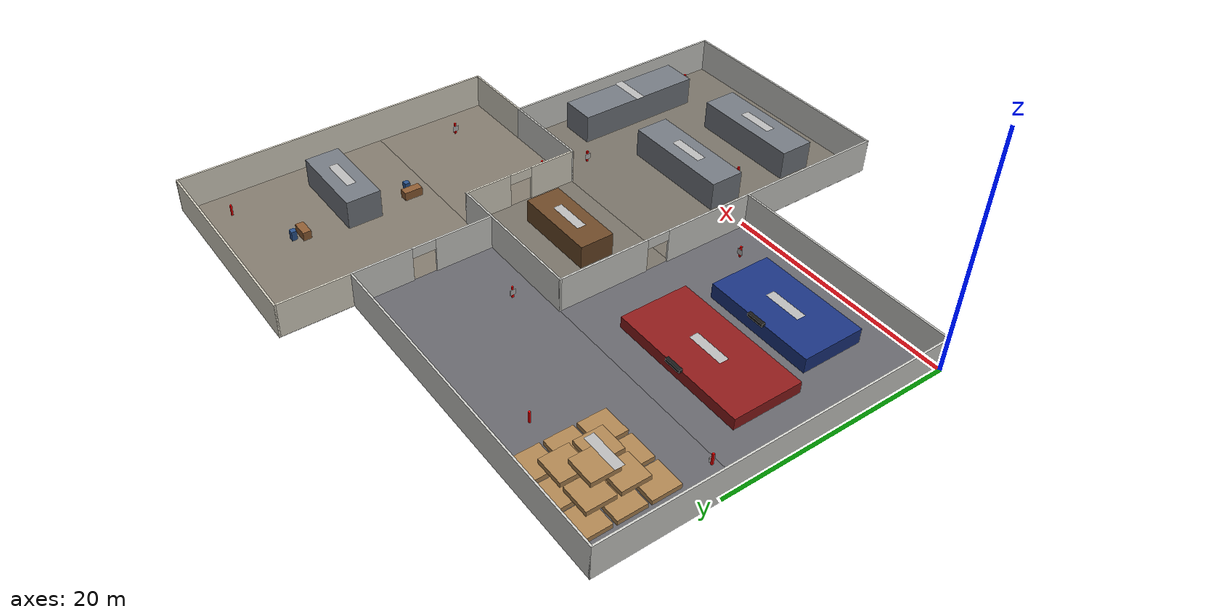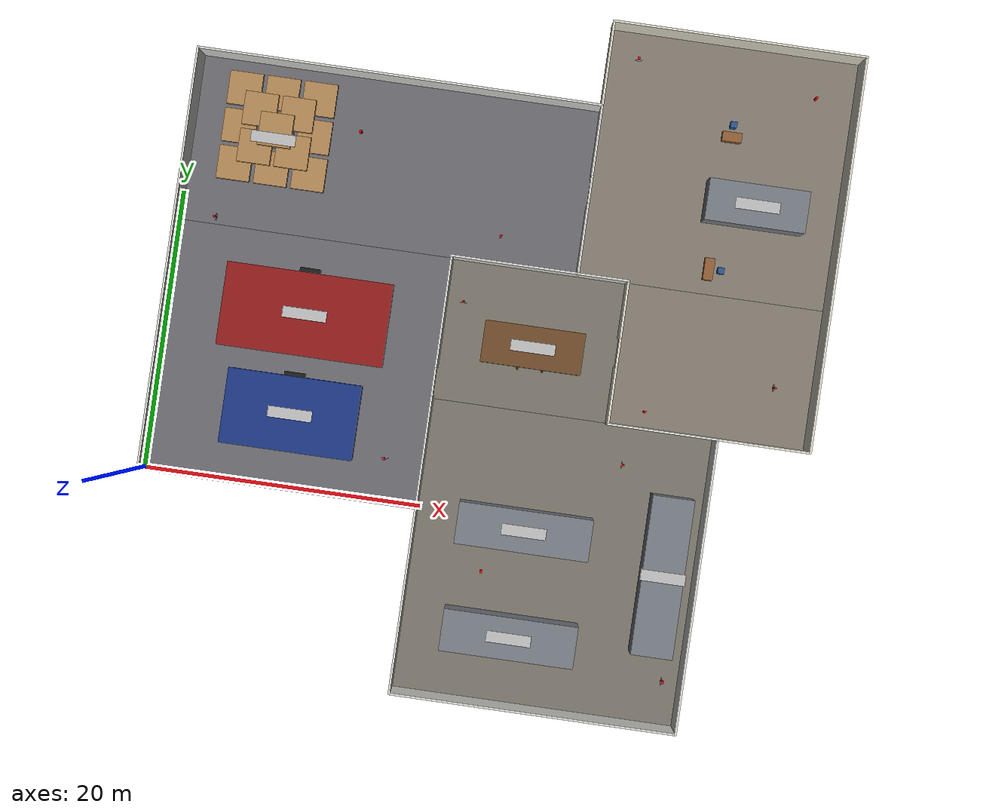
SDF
<sdf version="1.6">
 <world name="warehouse_world">
  <physics name="default_physics" default="true" type="ode">
   <max_step_size>0.001</max_step_size>
   <real_time_factor>1</real_time_factor>
   <real_time_update_rate>1000</real_time_update_rate>
   <ode>
    <solver><type>quick</type><iters>150</iters><sor>1.3</sor></solver>
    <constraints>
     <cfm>0.00001</cfm>
     <erp>0.2</erp>
     <contact_max_correcting_vel>100</contact_max_correcting_vel>
     <contact_surface_layer>0.001</contact_surface_layer>
    </constraints>
   </ode>
  </physics>
  <scene>
   <ambient>0.35 0.35 0.35 1</ambient>
   <background>0.55 0.62 0.7 1</background>
   <shadows>true</shadows>
   <grid>false</grid>
   <origin_visual>false</origin_visual>
  </scene>
  <light name="sun" type="directional">
   <pose>0 0 30 0 0 0</pose>
   <diffuse>0.85 0.85 0.82 1</diffuse>
   <specular>0.15 0.15 0.15 1</specular>
   <direction>-0.35 0.25 -0.9</direction>
  </light>
  <model name="wall_warehouse_west">
   <static>true</static>
   <pose>0.0000 15.0000 1.5000 0.0000 0.0000 0.0000</pose>
   <link name="link">
    <inertial>
     <mass>50.0</mass>
     <inertia><ixx>0.1</ixx><ixy>0</ixy><ixz>0</ixz><iyy>0.1</iyy><iyz>0</iyz><izz>0.1</izz></inertia>
    </inertial>
    <collision name="collision">
     <geometry><box><size>0.1500 30.1500 3.0000</size></box></geometry>
     <surface><friction><ode><mu>0.8</mu><mu2>0.8</mu2></ode></friction></surface>
    </collision>
    <visual name="visual">
     <geometry><box><size>0.1500 30.1500 3.0000</size></box></geometry>
     <material>
      <ambient>0.820 0.820 0.800 1.00</ambient>
      <diffuse>0.820 0.820 0.800 1.00</diffuse>
      <specular>0.15 0.15 0.15 1</specular>
      <emissive>0 0 0 1</emissive>
     </material>
    </visual>
   </link>
  </model>
  <model name="wall_warehouse_north">
   <static>true</static>
   <pose>14.4000 30.0000 1.5000 0.0000 0.0000 0.0000</pose>
   <link name="link">
    <inertial>
     <mass>50.0</mass>
     <inertia><ixx>0.1</ixx><ixy>0</ixy><ixz>0</ixz><iyy>0.1</iyy><iyz>0</iyz><izz>0.1</izz></inertia>
    </inertial>
    <collision name="collision">
     <geometry><box><size>28.9500 0.1500 3.0000</size></box></geometry>
     <surface><friction><ode><mu>0.8</mu><mu2>0.8</mu2></ode></friction></surface>
    </collision>
    <visual name="visual">
     <geometry><box><size>28.9500 0.1500 3.0000</size></box></geometry>
     <material>
      <ambient>0.820 0.820 0.800 1.00</ambient>
      <diffuse>0.820 0.820 0.800 1.00</diffuse>
      <specular>0.15 0.15 0.15 1</specular>
      <emissive>0 0 0 1</emissive>
     </material>
    </visual>
   </link>
  </model>
  <model name="wall_upper_storage_shared">
   <static>true</static>
   <pose>26.1000 18.0000 1.5000 0.0000 0.0000 0.0000</pose>
   <link name="link">
    <inertial>
     <mass>50.0</mass>
     <inertia><ixx>0.1</ixx><ixy>0</ixy><ixz>0</ixz><iyy>0.1</iyy><iyz>0</iyz><izz>0.1</izz></inertia>
    </inertial>
    <collision name="collision">
     <geometry><box><size>12.7500 0.1500 3.0000</size></box></geometry>
     <surface><friction><ode><mu>0.8</mu><mu2>0.8</mu2></ode></friction></surface>
    </collision>
    <visual name="visual">
     <geometry><box><size>12.7500 0.1500 3.0000</size></box></geometry>
     <material>
      <ambient>0.820 0.820 0.800 1.00</ambient>
      <diffuse>0.820 0.820 0.800 1.00</diffuse>
      <specular>0.15 0.15 0.15 1</specular>
      <emissive>0 0 0 1</emissive>
     </material>
    </visual>
   </link>
  </model>
  <model name="wall_storage_west_exterior">
   <static>true</static>
   <pose>19.8000 -6.6000 1.5000 0.0000 0.0000 0.0000</pose>
   <link name="link">
    <inertial>
     <mass>50.0</mass>
     <inertia><ixx>0.1</ixx><ixy>0</ixy><ixz>0</ixz><iyy>0.1</iyy><iyz>0</iyz><izz>0.1</izz></inertia>
    </inertial>
    <collision name="collision">
     <geometry><box><size>0.1500 13.3500 3.0000</size></box></geometry>
     <surface><friction><ode><mu>0.8</mu><mu2>0.8</mu2></ode></friction></surface>
    </collision>
    <visual name="visual">
     <geometry><box><size>0.1500 13.3500 3.0000</size></box></geometry>
     <material>
      <ambient>0.820 0.820 0.800 1.00</ambient>
      <diffuse>0.820 0.820 0.800 1.00</diffuse>
      <specular>0.15 0.15 0.15 1</specular>
      <emissive>0 0 0 1</emissive>
     </material>
    </visual>
   </link>
  </model>
  <model name="wall_warehouse_south">
   <static>true</static>
   <pose>9.9000 0.0000 1.5000 0.0000 0.0000 0.0000</pose>
   <link name="link">
    <inertial>
     <mass>50.0</mass>
     <inertia><ixx>0.1</ixx><ixy>0</ixy><ixz>0</ixz><iyy>0.1</iyy><iyz>0</iyz><izz>0.1</izz></inertia>
    </inertial>
    <collision name="collision">
     <geometry><box><size>19.9500 0.1500 3.0000</size></box></geometry>
     <surface><friction><ode><mu>0.8</mu><mu2>0.8</mu2></ode></friction></surface>
    </collision>
    <visual name="visual">
     <geometry><box><size>19.9500 0.1500 3.0000</size></box></geometry>
     <material>
      <ambient>0.820 0.820 0.800 1.00</ambient>
      <diffuse>0.820 0.820 0.800 1.00</diffuse>
      <specular>0.15 0.15 0.15 1</specular>
      <emissive>0 0 0 1</emissive>
     </material>
    </visual>
   </link>
  </model>
  <model name="wall_office_storage_shared_south">
   <static>true</static>
   <pose>36.3000 7.8000 1.5000 0.0000 0.0000 0.0000</pose>
   <link name="link">
    <inertial>
     <mass>50.0</mass>
     <inertia><ixx>0.1</ixx><ixy>0</ixy><ixz>0</ixz><iyy>0.1</iyy><iyz>0</iyz><izz>0.1</izz></inertia>
    </inertial>
    <collision name="collision">
     <geometry><box><size>7.9500 0.1500 3.0000</size></box></geometry>
     <surface><friction><ode><mu>0.8</mu><mu2>0.8</mu2></ode></friction></surface>
    </collision>
    <visual name="visual">
     <geometry><box><size>7.9500 0.1500 3.0000</size></box></geometry>
     <material>
      <ambient>0.820 0.820 0.800 1.00</ambient>
      <diffuse>0.820 0.820 0.800 1.00</diffuse>
      <specular>0.15 0.15 0.15 1</specular>
      <emissive>0 0 0 1</emissive>
     </material>
    </visual>
   </link>
  </model>
  <model name="wall_office_south_exterior">
   <static>true</static>
   <pose>43.5000 7.8000 1.5000 0.0000 0.0000 0.0000</pose>
   <link name="link">
    <inertial>
     <mass>50.0</mass>
     <inertia><ixx>0.1</ixx><ixy>0</ixy><ixz>0</ixz><iyy>0.1</iyy><iyz>0</iyz><izz>0.1</izz></inertia>
    </inertial>
    <collision name="collision">
     <geometry><box><size>6.7500 0.1500 3.0000</size></box></geometry>
     <surface><friction><ode><mu>0.8</mu><mu2>0.8</mu2></ode></friction></surface>
    </collision>
    <visual name="visual">
     <geometry><box><size>6.7500 0.1500 3.0000</size></box></geometry>
     <material>
      <ambient>0.860 0.840 0.780 1.00</ambient>
      <diffuse>0.860 0.840 0.780 1.00</diffuse>
      <specular>0.15 0.15 0.15 1</specular>
      <emissive>0 0 0 1</emissive>
     </material>
    </visual>
   </link>
  </model>
  <model name="wall_storage_east_exterior">
   <static>true</static>
   <pose>40.2000 -2.7000 1.5000 0.0000 0.0000 0.0000</pose>
   <link name="link">
    <inertial>
     <mass>50.0</mass>
     <inertia><ixx>0.1</ixx><ixy>0</ixy><ixz>0</ixz><iyy>0.1</iyy><iyz>0</iyz><izz>0.1</izz></inertia>
    </inertial>
    <collision name="collision">
     <geometry><box><size>0.1500 21.1500 3.0000</size></box></geometry>
     <surface><friction><ode><mu>0.8</mu><mu2>0.8</mu2></ode></friction></surface>
    </collision>
    <visual name="visual">
     <geometry><box><size>0.1500 21.1500 3.0000</size></box></geometry>
     <material>
      <ambient>0.820 0.820 0.800 1.00</ambient>
      <diffuse>0.820 0.820 0.800 1.00</diffuse>
      <specular>0.15 0.15 0.15 1</specular>
      <emissive>0 0 0 1</emissive>
     </material>
    </visual>
   </link>
  </model>
  <model name="wall_storage_south_exterior">
   <static>true</static>
   <pose>30.0000 -13.2000 1.5000 0.0000 0.0000 0.0000</pose>
   <link name="link">
    <inertial>
     <mass>50.0</mass>
     <inertia><ixx>0.1</ixx><ixy>0</ixy><ixz>0</ixz><iyy>0.1</iyy><iyz>0</iyz><izz>0.1</izz></inertia>
    </inertial>
    <collision name="collision">
     <geometry><box><size>20.5500 0.1500 3.0000</size></box></geometry>
     <surface><friction><ode><mu>0.8</mu><mu2>0.8</mu2></ode></friction></surface>
    </collision>
    <visual name="visual">
     <geometry><box><size>20.5500 0.1500 3.0000</size></box></geometry>
     <material>
      <ambient>0.820 0.820 0.800 1.00</ambient>
      <diffuse>0.820 0.820 0.800 1.00</diffuse>
      <specular>0.15 0.15 0.15 1</specular>
      <emissive>0 0 0 1</emissive>
     </material>
    </visual>
   </link>
  </model>
  <model name="wall_office_west_upper">
   <static>true</static>
   <pose>28.8000 33.0000 1.5000 0.0000 0.0000 0.0000</pose>
   <link name="link">
    <inertial>
     <mass>50.0</mass>
     <inertia><ixx>0.1</ixx><ixy>0</ixy><ixz>0</ixz><iyy>0.1</iyy><iyz>0</iyz><izz>0.1</izz></inertia>
    </inertial>
    <collision name="collision">
     <geometry><box><size>0.1500 6.1500 3.0000</size></box></geometry>
     <surface><friction><ode><mu>0.8</mu><mu2>0.8</mu2></ode></friction></surface>
    </collision>
    <visual name="visual">
     <geometry><box><size>0.1500 6.1500 3.0000</size></box></geometry>
     <material>
      <ambient>0.860 0.840 0.780 1.00</ambient>
      <diffuse>0.860 0.840 0.780 1.00</diffuse>
      <specular>0.15 0.15 0.15 1</specular>
      <emissive>0 0 0 1</emissive>
     </material>
    </visual>
   </link>
  </model>
  <model name="wall_office_north_exterior">
   <static>true</static>
   <pose>37.8000 36.0000 1.5000 0.0000 0.0000 0.0000</pose>
   <link name="link">
    <inertial>
     <mass>50.0</mass>
     <inertia><ixx>0.1</ixx><ixy>0</ixy><ixz>0</ixz><iyy>0.1</iyy><iyz>0</iyz><izz>0.1</izz></inertia>
    </inertial>
    <collision name="collision">
     <geometry><box><size>18.1500 0.1500 3.0000</size></box></geometry>
     <surface><friction><ode><mu>0.8</mu><mu2>0.8</mu2></ode></friction></surface>
    </collision>
    <visual name="visual">
     <geometry><box><size>18.1500 0.1500 3.0000</size></box></geometry>
     <material>
      <ambient>0.860 0.840 0.780 1.00</ambient>
      <diffuse>0.860 0.840 0.780 1.00</diffuse>
      <specular>0.15 0.15 0.15 1</specular>
      <emissive>0 0 0 1</emissive>
     </material>
    </visual>
   </link>
  </model>
  <model name="wall_office_east_exterior">
   <static>true</static>
   <pose>46.8000 21.9000 1.5000 0.0000 0.0000 0.0000</pose>
   <link name="link">
    <inertial>
     <mass>50.0</mass>
     <inertia><ixx>0.1</ixx><ixy>0</ixy><ixz>0</ixz><iyy>0.1</iyy><iyz>0</iyz><izz>0.1</izz></inertia>
    </inertial>
    <collision name="collision">
     <geometry><box><size>0.1500 28.3500 3.0000</size></box></geometry>
     <surface><friction><ode><mu>0.8</mu><mu2>0.8</mu2></ode></friction></surface>
    </collision>
    <visual name="visual">
     <geometry><box><size>0.1500 28.3500 3.0000</size></box></geometry>
     <material>
      <ambient>0.860 0.840 0.780 1.00</ambient>
      <diffuse>0.860 0.840 0.780 1.00</diffuse>
      <specular>0.15 0.15 0.15 1</specular>
      <emissive>0 0 0 1</emissive>
     </material>
    </visual>
   </link>
  </model>
  <model name="door_warehouse_office_jamb_a">
   <static>true</static>
   <pose>28.8000 20.4625 1.5000 0.0000 0.0000 0.0000</pose>
   <link name="link">
    <inertial>
     <mass>50.0</mass>
     <inertia><ixx>0.1</ixx><ixy>0</ixy><ixz>0</ixz><iyy>0.1</iyy><iyz>0</iyz><izz>0.1</izz></inertia>
    </inertial>
    <collision name="collision">
     <geometry><box><size>0.1500 5.0750 3.0000</size></box></geometry>
     <surface><friction><ode><mu>0.8</mu><mu2>0.8</mu2></ode></friction></surface>
    </collision>
    <visual name="visual">
     <geometry><box><size>0.1500 5.0750 3.0000</size></box></geometry>
     <material>
      <ambient>0.820 0.820 0.800 1.00</ambient>
      <diffuse>0.820 0.820 0.800 1.00</diffuse>
      <specular>0.15 0.15 0.15 1</specular>
      <emissive>0 0 0 1</emissive>
     </material>
    </visual>
   </link>
  </model>
  <model name="door_warehouse_office_jamb_b">
   <static>true</static>
   <pose>28.8000 27.5375 1.5000 0.0000 0.0000 0.0000</pose>
   <link name="link">
    <inertial>
     <mass>50.0</mass>
     <inertia><ixx>0.1</ixx><ixy>0</ixy><ixz>0</ixz><iyy>0.1</iyy><iyz>0</iyz><izz>0.1</izz></inertia>
    </inertial>
    <collision name="collision">
     <geometry><box><size>0.1500 5.0750 3.0000</size></box></geometry>
     <surface><friction><ode><mu>0.8</mu><mu2>0.8</mu2></ode></friction></surface>
    </collision>
    <visual name="visual">
     <geometry><box><size>0.1500 5.0750 3.0000</size></box></geometry>
     <material>
      <ambient>0.820 0.820 0.800 1.00</ambient>
      <diffuse>0.820 0.820 0.800 1.00</diffuse>
      <specular>0.15 0.15 0.15 1</specular>
      <emissive>0 0 0 1</emissive>
     </material>
    </visual>
   </link>
  </model>
  <model name="door_warehouse_office_header">
   <static>true</static>
   <pose>28.8000 24.0000 2.5500 0.0000 0.0000 0.0000</pose>
   <link name="link">
    <inertial>
     <mass>10.0</mass>
     <inertia><ixx>0.1</ixx><ixy>0</ixy><ixz>0</ixz><iyy>0.1</iyy><iyz>0</iyz><izz>0.1</izz></inertia>
    </inertial>
    <collision name="collision">
     <geometry><box><size>0.1500 2.0000 0.9000</size></box></geometry>
     <surface><friction><ode><mu>0.8</mu><mu2>0.8</mu2></ode></friction></surface>
    </collision>
    <visual name="visual">
     <geometry><box><size>0.1500 2.0000 0.9000</size></box></geometry>
     <material>
      <ambient>0.820 0.820 0.800 1.00</ambient>
      <diffuse>0.820 0.820 0.800 1.00</diffuse>
      <specular>0.15 0.15 0.15 1</specular>
      <emissive>0 0 0 1</emissive>
     </material>
    </visual>
   </link>
  </model>
  <model name="door_warehouse_storage_jamb_a">
   <static>true</static>
   <pose>19.8000 3.9625 1.5000 0.0000 0.0000 0.0000</pose>
   <link name="link">
    <inertial>
     <mass>50.0</mass>
     <inertia><ixx>0.1</ixx><ixy>0</ixy><ixz>0</ixz><iyy>0.1</iyy><iyz>0</iyz><izz>0.1</izz></inertia>
    </inertial>
    <collision name="collision">
     <geometry><box><size>0.1500 8.0750 3.0000</size></box></geometry>
     <surface><friction><ode><mu>0.8</mu><mu2>0.8</mu2></ode></friction></surface>
    </collision>
    <visual name="visual">
     <geometry><box><size>0.1500 8.0750 3.0000</size></box></geometry>
     <material>
      <ambient>0.820 0.820 0.800 1.00</ambient>
      <diffuse>0.820 0.820 0.800 1.00</diffuse>
      <specular>0.15 0.15 0.15 1</specular>
      <emissive>0 0 0 1</emissive>
     </material>
    </visual>
   </link>
  </model>
  <model name="door_warehouse_storage_jamb_b">
   <static>true</static>
   <pose>19.8000 14.0375 1.5000 0.0000 0.0000 0.0000</pose>
   <link name="link">
    <inertial>
     <mass>50.0</mass>
     <inertia><ixx>0.1</ixx><ixy>0</ixy><ixz>0</ixz><iyy>0.1</iyy><iyz>0</iyz><izz>0.1</izz></inertia>
    </inertial>
    <collision name="collision">
     <geometry><box><size>0.1500 8.0750 3.0000</size></box></geometry>
     <surface><friction><ode><mu>0.8</mu><mu2>0.8</mu2></ode></friction></surface>
    </collision>
    <visual name="visual">
     <geometry><box><size>0.1500 8.0750 3.0000</size></box></geometry>
     <material>
      <ambient>0.820 0.820 0.800 1.00</ambient>
      <diffuse>0.820 0.820 0.800 1.00</diffuse>
      <specular>0.15 0.15 0.15 1</specular>
      <emissive>0 0 0 1</emissive>
     </material>
    </visual>
   </link>
  </model>
  <model name="door_warehouse_storage_header">
   <static>true</static>
   <pose>19.8000 9.0000 2.5500 0.0000 0.0000 0.0000</pose>
   <link name="link">
    <inertial>
     <mass>10.0</mass>
     <inertia><ixx>0.1</ixx><ixy>0</ixy><ixz>0</ixz><iyy>0.1</iyy><iyz>0</iyz><izz>0.1</izz></inertia>
    </inertial>
    <collision name="collision">
     <geometry><box><size>0.1500 2.0000 0.9000</size></box></geometry>
     <surface><friction><ode><mu>0.8</mu><mu2>0.8</mu2></ode></friction></surface>
    </collision>
    <visual name="visual">
     <geometry><box><size>0.1500 2.0000 0.9000</size></box></geometry>
     <material>
      <ambient>0.820 0.820 0.800 1.00</ambient>
      <diffuse>0.820 0.820 0.800 1.00</diffuse>
      <specular>0.15 0.15 0.15 1</specular>
      <emissive>0 0 0 1</emissive>
     </material>
    </visual>
   </link>
  </model>
  <model name="door_office_storage_jamb_a">
   <static>true</static>
   <pose>32.4000 9.8125 1.5000 0.0000 0.0000 0.0000</pose>
   <link name="link">
    <inertial>
     <mass>50.0</mass>
     <inertia><ixx>0.1</ixx><ixy>0</ixy><ixz>0</ixz><iyy>0.1</iyy><iyz>0</iyz><izz>0.1</izz></inertia>
    </inertial>
    <collision name="collision">
     <geometry><box><size>0.1500 4.1750 3.0000</size></box></geometry>
     <surface><friction><ode><mu>0.8</mu><mu2>0.8</mu2></ode></friction></surface>
    </collision>
    <visual name="visual">
     <geometry><box><size>0.1500 4.1750 3.0000</size></box></geometry>
     <material>
      <ambient>0.860 0.840 0.780 1.00</ambient>
      <diffuse>0.860 0.840 0.780 1.00</diffuse>
      <specular>0.15 0.15 0.15 1</specular>
      <emissive>0 0 0 1</emissive>
     </material>
    </visual>
   </link>
  </model>
  <model name="door_office_storage_jamb_b">
   <static>true</static>
   <pose>32.4000 15.9875 1.5000 0.0000 0.0000 0.0000</pose>
   <link name="link">
    <inertial>
     <mass>50.0</mass>
     <inertia><ixx>0.1</ixx><ixy>0</ixy><ixz>0</ixz><iyy>0.1</iyy><iyz>0</iyz><izz>0.1</izz></inertia>
    </inertial>
    <collision name="collision">
     <geometry><box><size>0.1500 4.1750 3.0000</size></box></geometry>
     <surface><friction><ode><mu>0.8</mu><mu2>0.8</mu2></ode></friction></surface>
    </collision>
    <visual name="visual">
     <geometry><box><size>0.1500 4.1750 3.0000</size></box></geometry>
     <material>
      <ambient>0.860 0.840 0.780 1.00</ambient>
      <diffuse>0.860 0.840 0.780 1.00</diffuse>
      <specular>0.15 0.15 0.15 1</specular>
      <emissive>0 0 0 1</emissive>
     </material>
    </visual>
   </link>
  </model>
  <model name="door_office_storage_header">
   <static>true</static>
   <pose>32.4000 12.9000 2.5500 0.0000 0.0000 0.0000</pose>
   <link name="link">
    <inertial>
     <mass>10.0</mass>
     <inertia><ixx>0.1</ixx><ixy>0</ixy><ixz>0</ixz><iyy>0.1</iyy><iyz>0</iyz><izz>0.1</izz></inertia>
    </inertial>
    <collision name="collision">
     <geometry><box><size>0.1500 2.0000 0.9000</size></box></geometry>
     <surface><friction><ode><mu>0.8</mu><mu2>0.8</mu2></ode></friction></surface>
    </collision>
    <visual name="visual">
     <geometry><box><size>0.1500 2.0000 0.9000</size></box></geometry>
     <material>
      <ambient>0.860 0.840 0.780 1.00</ambient>
      <diffuse>0.860 0.840 0.780 1.00</diffuse>
      <specular>0.15 0.15 0.15 1</specular>
      <emissive>0 0 0 1</emissive>
     </material>
    </visual>
   </link>
  </model>
  <model name="floor_warehouse_upper">
   <static>true</static>
   <pose>14.4000 24.0000 -0.0500 0.0000 0.0000 0.0000</pose>
   <link name="link">
    <inertial>
     <mass>100.0</mass>
     <inertia><ixx>0.1</ixx><ixy>0</ixy><ixz>0</ixz><iyy>0.1</iyy><iyz>0</iyz><izz>0.1</izz></inertia>
    </inertial>
    <collision name="collision">
     <geometry><box><size>28.8000 12.0000 0.1000</size></box></geometry>
     <surface><friction><ode><mu>0.8</mu><mu2>0.8</mu2></ode></friction></surface>
    </collision>
    <visual name="visual">
     <geometry><box><size>28.8000 12.0000 0.1000</size></box></geometry>
     <material>
      <ambient>0.400 0.400 0.420 1.00</ambient>
      <diffuse>0.400 0.400 0.420 1.00</diffuse>
      <specular>0.15 0.15 0.15 1</specular>
      <emissive>0 0 0 1</emissive>
     </material>
    </visual>
   </link>
  </model>
  <model name="floor_warehouse_lower">
   <static>true</static>
   <pose>9.9000 9.0000 -0.0500 0.0000 0.0000 0.0000</pose>
   <link name="link">
    <inertial>
     <mass>100.0</mass>
     <inertia><ixx>0.1</ixx><ixy>0</ixy><ixz>0</ixz><iyy>0.1</iyy><iyz>0</iyz><izz>0.1</izz></inertia>
    </inertial>
    <collision name="collision">
     <geometry><box><size>19.8000 18.0000 0.1000</size></box></geometry>
     <surface><friction><ode><mu>0.8</mu><mu2>0.8</mu2></ode></friction></surface>
    </collision>
    <visual name="visual">
     <geometry><box><size>19.8000 18.0000 0.1000</size></box></geometry>
     <material>
      <ambient>0.400 0.400 0.420 1.00</ambient>
      <diffuse>0.400 0.400 0.420 1.00</diffuse>
      <specular>0.15 0.15 0.15 1</specular>
      <emissive>0 0 0 1</emissive>
     </material>
    </visual>
   </link>
  </model>
  <model name="floor_storage_upper">
   <static>true</static>
   <pose>26.1000 12.9000 -0.0500 0.0000 0.0000 0.0000</pose>
   <link name="link">
    <inertial>
     <mass>100.0</mass>
     <inertia><ixx>0.1</ixx><ixy>0</ixy><ixz>0</ixz><iyy>0.1</iyy><iyz>0</iyz><izz>0.1</izz></inertia>
    </inertial>
    <collision name="collision">
     <geometry><box><size>12.6000 10.2000 0.1000</size></box></geometry>
     <surface><friction><ode><mu>0.8</mu><mu2>0.8</mu2></ode></friction></surface>
    </collision>
    <visual name="visual">
     <geometry><box><size>12.6000 10.2000 0.1000</size></box></geometry>
     <material>
      <ambient>0.460 0.440 0.400 1.00</ambient>
      <diffuse>0.460 0.440 0.400 1.00</diffuse>
      <specular>0.15 0.15 0.15 1</specular>
      <emissive>0 0 0 1</emissive>
     </material>
    </visual>
   </link>
  </model>
  <model name="floor_storage_lower">
   <static>true</static>
   <pose>30.0000 -2.7000 -0.0500 0.0000 0.0000 0.0000</pose>
   <link name="link">
    <inertial>
     <mass>100.0</mass>
     <inertia><ixx>0.1</ixx><ixy>0</ixy><ixz>0</ixz><iyy>0.1</iyy><iyz>0</iyz><izz>0.1</izz></inertia>
    </inertial>
    <collision name="collision">
     <geometry><box><size>20.4000 21.0000 0.1000</size></box></geometry>
     <surface><friction><ode><mu>0.8</mu><mu2>0.8</mu2></ode></friction></surface>
    </collision>
    <visual name="visual">
     <geometry><box><size>20.4000 21.0000 0.1000</size></box></geometry>
     <material>
      <ambient>0.460 0.440 0.400 1.00</ambient>
      <diffuse>0.460 0.440 0.400 1.00</diffuse>
      <specular>0.15 0.15 0.15 1</specular>
      <emissive>0 0 0 1</emissive>
     </material>
    </visual>
   </link>
  </model>
  <model name="floor_office_upper">
   <static>true</static>
   <pose>37.8000 27.0000 -0.0500 0.0000 0.0000 0.0000</pose>
   <link name="link">
    <inertial>
     <mass>100.0</mass>
     <inertia><ixx>0.1</ixx><ixy>0</ixy><ixz>0</ixz><iyy>0.1</iyy><iyz>0</iyz><izz>0.1</izz></inertia>
    </inertial>
    <collision name="collision">
     <geometry><box><size>18.0000 18.0000 0.1000</size></box></geometry>
     <surface><friction><ode><mu>0.8</mu><mu2>0.8</mu2></ode></friction></surface>
    </collision>
    <visual name="visual">
     <geometry><box><size>18.0000 18.0000 0.1000</size></box></geometry>
     <material>
      <ambient>0.500 0.470 0.420 1.00</ambient>
      <diffuse>0.500 0.470 0.420 1.00</diffuse>
      <specular>0.15 0.15 0.15 1</specular>
      <emissive>0 0 0 1</emissive>
     </material>
    </visual>
   </link>
  </model>
  <model name="floor_office_lower">
   <static>true</static>
   <pose>39.6000 12.9000 -0.0500 0.0000 0.0000 0.0000</pose>
   <link name="link">
    <inertial>
     <mass>100.0</mass>
     <inertia><ixx>0.1</ixx><ixy>0</ixy><ixz>0</ixz><iyy>0.1</iyy><iyz>0</iyz><izz>0.1</izz></inertia>
    </inertial>
    <collision name="collision">
     <geometry><box><size>14.4000 10.2000 0.1000</size></box></geometry>
     <surface><friction><ode><mu>0.8</mu><mu2>0.8</mu2></ode></friction></surface>
    </collision>
    <visual name="visual">
     <geometry><box><size>14.4000 10.2000 0.1000</size></box></geometry>
     <material>
      <ambient>0.500 0.470 0.420 1.00</ambient>
      <diffuse>0.500 0.470 0.420 1.00</diffuse>
      <specular>0.15 0.15 0.15 1</specular>
      <emissive>0 0 0 1</emissive>
     </material>
    </visual>
   </link>
  </model>
  <model name="loading_area_pad">
   <static>true</static>
   <pose>6.0000 25.2000 0.0010 0.0000 0.0000 0.0000</pose>
   <link name="link">
    <inertial>
     <mass>5.0</mass>
     <inertia><ixx>0.1</ixx><ixy>0</ixy><ixz>0</ixz><iyy>0.1</iyy><iyz>0</iyz><izz>0.1</izz></inertia>
    </inertial>
    <collision name="collision">
     <geometry><plane><normal>0 0 1</normal><size>9.6000 9.6000</size></plane></geometry>
     <surface><friction><ode><mu>0.8</mu><mu2>0.8</mu2></ode></friction></surface>
    </collision>
    <visual name="visual">
     <geometry><plane><normal>0 0 1</normal><size>9.6000 9.6000</size></plane></geometry>
     <material>
      <ambient>0.850 0.700 0.100 1.00</ambient>
      <diffuse>0.850 0.700 0.100 1.00</diffuse>
      <specular>0.15 0.15 0.15 1</specular>
      <emissive>0 0 0 1</emissive>
     </material>
    </visual>
   </link>
  </model>
  <model name="machine_1">
   <static>true</static>
   <pose>9.9000 12.4500 0.5000 0.0000 0.0000 0.0000</pose>
   <link name="link">
    <inertial>
     <mass>250.0</mass>
     <inertia><ixx>0.1</ixx><ixy>0</ixy><ixz>0</ixz><iyy>0.1</iyy><iyz>0</iyz><izz>0.1</izz></inertia>
    </inertial>
    <collision name="collision">
     <geometry><box><size>12.0000 6.0000 1.0000</size></box></geometry>
     <surface><friction><ode><mu>0.8</mu><mu2>0.8</mu2></ode></friction></surface>
    </collision>
    <visual name="visual">
     <geometry><box><size>12.0000 6.0000 1.0000</size></box></geometry>
     <material>
      <ambient>0.550 0.100 0.100 1.00</ambient>
      <diffuse>0.550 0.100 0.100 1.00</diffuse>
      <specular>0.15 0.15 0.15 1</specular>
      <emissive>0 0 0 1</emissive>
     </material>
    </visual>
   </link>
  </model>
  <model name="machine_1_panel">
   <static>true</static>
   <pose>9.9000 15.6000 1.1500 0.0000 0.0000 0.0000</pose>
   <link name="link">
    <inertial>
     <mass>2.0</mass>
     <inertia><ixx>0.1</ixx><ixy>0</ixy><ixz>0</ixz><iyy>0.1</iyy><iyz>0</iyz><izz>0.1</izz></inertia>
    </inertial>
    <collision name="collision">
     <geometry><box><size>1.5000 0.3000 0.3000</size></box></geometry>
     <surface><friction><ode><mu>0.8</mu><mu2>0.8</mu2></ode></friction></surface>
    </collision>
    <visual name="visual">
     <geometry><box><size>1.5000 0.3000 0.3000</size></box></geometry>
     <material>
      <ambient>0.100 0.100 0.100 1.00</ambient>
      <diffuse>0.100 0.100 0.100 1.00</diffuse>
      <specular>0.15 0.15 0.15 1</specular>
      <emissive>0 0 0 1</emissive>
     </material>
    </visual>
   </link>
  </model>
  <model name="machine_2">
   <static>true</static>
   <pose>9.9000 5.2500 0.6500 0.0000 0.0000 0.0000</pose>
   <link name="link">
    <inertial>
     <mass>300.0</mass>
     <inertia><ixx>0.1</ixx><ixy>0</ixy><ixz>0</ixz><iyy>0.1</iyy><iyz>0</iyz><izz>0.1</izz></inertia>
    </inertial>
    <collision name="collision">
     <geometry><box><size>9.6000 5.4000 1.3000</size></box></geometry>
     <surface><friction><ode><mu>0.8</mu><mu2>0.8</mu2></ode></friction></surface>
    </collision>
    <visual name="visual">
     <geometry><box><size>9.6000 5.4000 1.3000</size></box></geometry>
     <material>
      <ambient>0.100 0.200 0.500 1.00</ambient>
      <diffuse>0.100 0.200 0.500 1.00</diffuse>
      <specular>0.15 0.15 0.15 1</specular>
      <emissive>0 0 0 1</emissive>
     </material>
    </visual>
   </link>
  </model>
  <model name="machine_2_panel">
   <static>true</static>
   <pose>9.9000 8.1000 1.4500 0.0000 0.0000 0.0000</pose>
   <link name="link">
    <inertial>
     <mass>2.0</mass>
     <inertia><ixx>0.1</ixx><ixy>0</ixy><ixz>0</ixz><iyy>0.1</iyy><iyz>0</iyz><izz>0.1</izz></inertia>
    </inertial>
    <collision name="collision">
     <geometry><box><size>1.5000 0.3000 0.3000</size></box></geometry>
     <surface><friction><ode><mu>0.8</mu><mu2>0.8</mu2></ode></friction></surface>
    </collision>
    <visual name="visual">
     <geometry><box><size>1.5000 0.3000 0.3000</size></box></geometry>
     <material>
      <ambient>0.100 0.100 0.100 1.00</ambient>
      <diffuse>0.100 0.100 0.100 1.00</diffuse>
      <specular>0.15 0.15 0.15 1</specular>
      <emissive>0 0 0 1</emissive>
     </material>
    </visual>
   </link>
  </model>
  <model name="cupboard">
   <static>true</static>
   <pose>26.4000 12.4000 1.0000 0.0000 0.0000 0.0000</pose>
   <link name="link">
    <inertial>
     <mass>60.0</mass>
     <inertia><ixx>0.1</ixx><ixy>0</ixy><ixz>0</ixz><iyy>0.1</iyy><iyz>0</iyz><izz>0.1</izz></inertia>
    </inertial>
    <collision name="collision">
     <geometry><box><size>7.2000 3.0000 2.0000</size></box></geometry>
     <surface><friction><ode><mu>0.8</mu><mu2>0.8</mu2></ode></friction></surface>
    </collision>
    <visual name="visual">
     <geometry><box><size>7.2000 3.0000 2.0000</size></box></geometry>
     <material>
      <ambient>0.420 0.280 0.150 1.00</ambient>
      <diffuse>0.420 0.280 0.150 1.00</diffuse>
      <specular>0.15 0.15 0.15 1</specular>
      <emissive>0 0 0 1</emissive>
     </material>
    </visual>
   </link>
  </model>
  <model name="cupboard_handle_1">
   <static>true</static>
   <pose>25.5000 10.8100 1.0000 0.0000 0.0000 0.0000</pose>
   <link name="link">
    <inertial>
     <mass>0.2</mass>
     <inertia><ixx>0.1</ixx><ixy>0</ixy><ixz>0</ixz><iyy>0.1</iyy><iyz>0</iyz><izz>0.1</izz></inertia>
    </inertial>
    <collision name="collision">
     <geometry><box><size>0.1800 0.1800 0.1500</size></box></geometry>
     <surface><friction><ode><mu>0.8</mu><mu2>0.8</mu2></ode></friction></surface>
    </collision>
    <visual name="visual">
     <geometry><box><size>0.1800 0.1800 0.1500</size></box></geometry>
     <material>
      <ambient>0.200 0.130 0.070 1.00</ambient>
      <diffuse>0.200 0.130 0.070 1.00</diffuse>
      <specular>0.15 0.15 0.15 1</specular>
      <emissive>0 0 0 1</emissive>
     </material>
    </visual>
   </link>
  </model>
  <model name="cupboard_handle_2">
   <static>true</static>
   <pose>27.3000 10.8100 1.0000 0.0000 0.0000 0.0000</pose>
   <link name="link">
    <inertial>
     <mass>0.2</mass>
     <inertia><ixx>0.1</ixx><ixy>0</ixy><ixz>0</ixz><iyy>0.1</iyy><iyz>0</iyz><izz>0.1</izz></inertia>
    </inertial>
    <collision name="collision">
     <geometry><box><size>0.1800 0.1800 0.1500</size></box></geometry>
     <surface><friction><ode><mu>0.8</mu><mu2>0.8</mu2></ode></friction></surface>
    </collision>
    <visual name="visual">
     <geometry><box><size>0.1800 0.1800 0.1500</size></box></geometry>
     <material>
      <ambient>0.200 0.130 0.070 1.00</ambient>
      <diffuse>0.200 0.130 0.070 1.00</diffuse>
      <specular>0.15 0.15 0.15 1</specular>
      <emissive>0 0 0 1</emissive>
     </material>
    </visual>
   </link>
  </model>
  <model name="marker_stand_1">
   <static>true</static>
   <pose>2.5000 18.5000 0.5000 0.0000 0.0000 0.0000</pose>
   <link name="link">
    <collision name="collision"><geometry><box><size>0.15 0.15 1</size></box></geometry></collision>
    <visual name="visual">
     <geometry><box><size>0.15 0.15 1</size></box></geometry>
     <material><ambient>1 0 0 1</ambient><diffuse>1 0 0 1</diffuse></material>
    </visual>
   </link>
  </model>
  <model name="marker_stand_2">
   <static>true</static>
   <pose>17 3 0.5 0 0 0</pose>
   <link name="link">
    <collision name="collision"><geometry><box><size>0.15 0.15 1</size></box></geometry></collision>
    <visual name="visual">
     <geometry><box><size>0.15 0.15 1</size></box></geometry>
     <material><ambient>1 0 0 1</ambient><diffuse>1 0 0 1</diffuse></material>
    </visual>
   </link>
  </model>
  <model name="marker_stand_3">
   <static>true</static>
   <pose>23 20 0.5 0 0 0</pose>
   <link name="link">
    <collision name="collision"><geometry><box><size>0.15 0.15 1</size></box></geometry></collision>
    <visual name="visual">
     <geometry><box><size>0.15 0.15 1</size></box></geometry>
     <material><ambient>1 0 0 1</ambient><diffuse>1 0 0 1</diffuse></material>
    </visual>
   </link>
  </model>
  <model name="marker_stand_4">
   <static>true</static>
   <pose>21 15 0.5 0 0 0</pose>
   <link name="link">
    <collision name="collision"><geometry><box><size>0.15 0.15 1</size></box></geometry></collision>
    <visual name="visual">
     <geometry><box><size>0.15 0.15 1</size></box></geometry>
     <material><ambient>1 0 0 1</ambient><diffuse>1 0 0 1</diffuse></material>
    </visual>
   </link>
  </model>
  <model name="marker_stand_5">
   <static>true</static>
   <pose>34 5 0.5 0 0 0</pose>
   <link name="link">
    <collision name="collision"><geometry><box><size>0.15 0.15 1</size></box></geometry></collision>
    <visual name="visual">
     <geometry><box><size>0.15 0.15 1</size></box></geometry>
     <material><ambient>1 0 0 1</ambient><diffuse>1 0 0 1</diffuse></material>
    </visual>
   </link>
  </model>
  <model name="marker_stand_6">
   <static>true</static>
   <pose>39 -10 0.5 0 0 0</pose>
   <link name="link">
    <collision name="collision"><geometry><box><size>0.15 0.15 1</size></box></geometry></collision>
    <visual name="visual">
     <geometry><box><size>0.15 0.15 1</size></box></geometry>
     <material><ambient>1 0 0 1</ambient><diffuse>1 0 0 1</diffuse></material>
    </visual>
   </link>
  </model>
  <model name="marker_stand_7">
   <static>true</static>
   <pose>44 33 0.5 0 0 0</pose>
   <link name="link">
    <collision name="collision"><geometry><box><size>0.15 0.15 1</size></box></geometry></collision>
    <visual name="visual">
     <geometry><box><size>0.15 0.15 1</size></box></geometry>
     <material><ambient>1 0 0 1</ambient><diffuse>1 0 0 1</diffuse></material>
    </visual>
   </link>
  </model>
  <model name="marker_stand_8">
   <static>true</static>
   <pose>35 9 0.5 0 0 0</pose>
   <link name="link">
    <collision name="collision"><geometry><box><size>0.15 0.15 1</size></box></geometry></collision>
    <visual name="visual">
     <geometry><box><size>0.15 0.15 1</size></box></geometry>
     <material><ambient>1 0 0 1</ambient><diffuse>1 0 0 1</diffuse></material>
    </visual>
   </link>
  </model>
  <model name="marker_stand_9">
   <static>true</static>
   <pose>12 26 0.5 0 0 0</pose>
   <link name="link">
    <collision name="collision"><geometry><box><size>0.15 0.15 1</size></box></geometry></collision>
    <visual name="visual">
     <geometry><box><size>0.15 0.15 1</size></box></geometry>
     <material><ambient>1 0 0 1</ambient><diffuse>1 0 0 1</diffuse></material>
    </visual>
   </link>
  </model>
  <model name="marker_stand_10">
   <static>true</static>
   <pose>25 -4 0.5 0 0 0</pose>
   <link name="link">
    <collision name="collision"><geometry><box><size>0.15 0.15 1</size></box></geometry></collision>
    <visual name="visual">
     <geometry><box><size>0.15 0.15 1</size></box></geometry>
     <material><ambient>1 0 0 1</ambient><diffuse>1 0 0 1</diffuse></material>
    </visual>
   </link>
  </model>
  <model name="marker_stand_11">
   <static>true</static>
   <pose>31 34 0.5 0 0 0</pose>
   <link name="link">
    <collision name="collision"><geometry><box><size>0.15 0.15 1</size></box></geometry></collision>
    <visual name="visual">
     <geometry><box><size>0.15 0.15 1</size></box></geometry>
     <material><ambient>1 0 0 1</ambient><diffuse>1 0 0 1</diffuse></material>
    </visual>
   </link>
  </model>
  <model name="marker_stand_12">
   <static>true</static>
   <pose>44 12 0.5 0 0 0</pose>
   <link name="link">
    <collision name="collision"><geometry><box><size>0.15 0.15 1</size></box></geometry></collision>
    <visual name="visual">
     <geometry><box><size>0.15 0.15 1</size></box></geometry>
     <material><ambient>1 0 0 1</ambient><diffuse>1 0 0 1</diffuse></material>
    </visual>
   </link>
  </model>
  <include>
   <uri>model://aruco_marker_0</uri>
   <name>aruco_0</name>
   <pose>2.575 18.5 0.5 0 0 -1.5708</pose>
  </include>
  <include><uri>model://aruco_marker_1</uri><name>aruco_1</name><pose>17 3.075 0.5 0 0 0</pose></include>
  <include><uri>model://aruco_marker_2</uri><name>aruco_2</name><pose>22.925 20 0.5 0 0 1.5708</pose></include>
  <include><uri>model://aruco_marker_3</uri><name>aruco_3</name><pose>21 14.925 0.5 0 0 0</pose></include>
  <include><uri>model://aruco_marker_4</uri><name>aruco_4</name><pose>33.925 5 0.5 0 0 1.5708</pose></include>
  <include><uri>model://aruco_marker_5</uri><name>aruco_5</name><pose>38.925 -10 0.5 0 0 1.5708</pose></include>
  <include><uri>model://aruco_marker_10</uri><name>aruco_10</name><pose>31 33.925 0.5 0 0 0</pose></include>
  <include>
   <uri>model://aruco_marker_11</uri>
   <name>aruco_11</name>
   <pose>43.925 12 0.5 0 0 1.5708</pose>
  </include>
  <model name="table_3">
   <static>true</static>
   <pose>38.4000 29.4000 0.3750 0.0000 0.0000 0.0000</pose>
   <link name="link">
    <inertial>
     <mass>20.0</mass>
     <inertia><ixx>0.1</ixx><ixy>0</ixy><ixz>0</ixz><iyy>0.1</iyy><iyz>0</iyz><izz>0.1</izz></inertia>
    </inertial>
    <collision name="collision">
     <geometry><box><size>1.4000 0.7000 0.7500</size></box></geometry>
     <surface><friction><ode><mu>0.8</mu><mu2>0.8</mu2></ode></friction></surface>
    </collision>
    <visual name="visual">
     <geometry><box><size>1.4000 0.7000 0.7500</size></box></geometry>
     <material>
      <ambient>0.550 0.360 0.200 1.00</ambient>
      <diffuse>0.550 0.360 0.200 1.00</diffuse>
      <specular>0.15 0.15 0.15 1</specular>
      <emissive>0 0 0 1</emissive>
     </material>
    </visual>
   </link>
  </model>
  <model name="chair_3">
   <static>true</static>
   <pose>38.4000 30.2750 0.4250 0.0000 0.0000 0.0000</pose>
   <link name="link">
    <inertial>
     <mass>20.0</mass>
     <inertia><ixx>0.1</ixx><ixy>0</ixy><ixz>0</ixz><iyy>0.1</iyy><iyz>0</iyz><izz>0.1</izz></inertia>
    </inertial>
    <collision name="collision">
     <geometry><box><size>0.4500 0.4500 0.8500</size></box></geometry>
     <surface><friction><ode><mu>0.8</mu><mu2>0.8</mu2></ode></friction></surface>
    </collision>
    <visual name="visual">
     <geometry><box><size>0.4500 0.4500 0.8500</size></box></geometry>
     <material>
      <ambient>0.160 0.320 0.550 1.00</ambient>
      <diffuse>0.160 0.320 0.550 1.00</diffuse>
      <specular>0.15 0.15 0.15 1</specular>
      <emissive>0 0 0 1</emissive>
     </material>
    </visual>
   </link>
  </model>
  <model name="table_4">
   <static>true</static>
   <pose>38.1000 19.8000 0.3750 0.0000 0.0000 0.0000</pose>
   <link name="link">
    <inertial>
     <mass>20.0</mass>
     <inertia><ixx>0.1</ixx><ixy>0</ixy><ixz>0</ixz><iyy>0.1</iyy><iyz>0</iyz><izz>0.1</izz></inertia>
    </inertial>
    <collision name="collision">
     <geometry><box><size>0.7000 1.6000 0.7500</size></box></geometry>
     <surface><friction><ode><mu>0.8</mu><mu2>0.8</mu2></ode></friction></surface>
    </collision>
    <visual name="visual">
     <geometry><box><size>0.7000 1.6000 0.7500</size></box></geometry>
     <material>
      <ambient>0.550 0.360 0.200 1.00</ambient>
      <diffuse>0.550 0.360 0.200 1.00</diffuse>
      <specular>0.15 0.15 0.15 1</specular>
      <emissive>0 0 0 1</emissive>
     </material>
    </visual>
   </link>
  </model>
  <model name="chair_4">
   <static>true</static>
   <pose>38.9750 19.8000 0.4250 0.0000 0.0000 0.0000</pose>
   <link name="link">
    <inertial>
     <mass>20.0</mass>
     <inertia><ixx>0.1</ixx><ixy>0</ixy><ixz>0</ixz><iyy>0.1</iyy><iyz>0</iyz><izz>0.1</izz></inertia>
    </inertial>
    <collision name="collision">
     <geometry><box><size>0.4500 0.4500 0.8500</size></box></geometry>
     <surface><friction><ode><mu>0.8</mu><mu2>0.8</mu2></ode></friction></surface>
    </collision>
    <visual name="visual">
     <geometry><box><size>0.4500 0.4500 0.8500</size></box></geometry>
     <material>
      <ambient>0.160 0.320 0.550 1.00</ambient>
      <diffuse>0.160 0.320 0.550 1.00</diffuse>
      <specular>0.15 0.15 0.15 1</specular>
      <emissive>0 0 0 1</emissive>
     </material>
    </visual>
   </link>
  </model>
  <model name="rack_storage_1">
   <static>true</static>
   <pose>27.6000 -0.6000 1.2500 0.0000 0.0000 0.0000</pose>
   <link name="link">
    <inertial>
     <mass>200.0</mass>
     <inertia><ixx>0.1</ixx><ixy>0</ixy><ixz>0</ixz><iyy>0.1</iyy><iyz>0</iyz><izz>0.1</izz></inertia>
    </inertial>
    <collision name="collision">
     <geometry><box><size>9.6000 3.0000 2.5000</size></box></geometry>
     <surface><friction><ode><mu>0.8</mu><mu2>0.8</mu2></ode></friction></surface>
    </collision>
    <visual name="visual">
     <geometry><box><size>9.6000 3.0000 2.5000</size></box></geometry>
     <material>
      <ambient>0.450 0.470 0.500 1.00</ambient>
      <diffuse>0.450 0.470 0.500 1.00</diffuse>
      <specular>0.15 0.15 0.15 1</specular>
      <emissive>0 0 0 1</emissive>
     </material>
    </visual>
   </link>
  </model>
  <model name="rack_storage_2">
   <static>true</static>
   <pose>27.6000 -8.2500 1.2500 0.0000 0.0000 0.0000</pose>
   <link name="link">
    <inertial>
     <mass>200.0</mass>
     <inertia><ixx>0.1</ixx><ixy>0</ixy><ixz>0</ixz><iyy>0.1</iyy><iyz>0</iyz><izz>0.1</izz></inertia>
    </inertial>
    <collision name="collision">
     <geometry><box><size>9.6000 3.0000 2.5000</size></box></geometry>
     <surface><friction><ode><mu>0.8</mu><mu2>0.8</mu2></ode></friction></surface>
    </collision>
    <visual name="visual">
     <geometry><box><size>9.6000 3.0000 2.5000</size></box></geometry>
     <material>
      <ambient>0.450 0.470 0.500 1.00</ambient>
      <diffuse>0.450 0.470 0.500 1.00</diffuse>
      <specular>0.15 0.15 0.15 1</specular>
      <emissive>0 0 0 1</emissive>
     </material>
    </visual>
   </link>
  </model>
  <model name="rack_storage_vertical">
   <static>true</static>
   <pose>37.8000 -2.4000 1.2500 0.0000 0.0000 0.0000</pose>
   <link name="link">
    <inertial>
     <mass>200.0</mass>
     <inertia><ixx>0.1</ixx><ixy>0</ixy><ixz>0</ixz><iyy>0.1</iyy><iyz>0</iyz><izz>0.1</izz></inertia>
    </inertial>
    <collision name="collision">
     <geometry><box><size>3.0000 11.4000 2.5000</size></box></geometry>
     <surface><friction><ode><mu>0.8</mu><mu2>0.8</mu2></ode></friction></surface>
    </collision>
    <visual name="visual">
     <geometry><box><size>3.0000 11.4000 2.5000</size></box></geometry>
     <material>
      <ambient>0.450 0.470 0.500 1.00</ambient>
      <diffuse>0.450 0.470 0.500 1.00</diffuse>
      <specular>0.15 0.15 0.15 1</specular>
      <emissive>0 0 0 1</emissive>
     </material>
    </visual>
   </link>
  </model>
  <model name="rack_office">
   <static>true</static>
   <pose>40.7000 24.6000 1.2500 0.0000 0.0000 0.0000</pose>
   <link name="link">
    <inertial>
     <mass>200.0</mass>
     <inertia><ixx>0.1</ixx><ixy>0</ixy><ixz>0</ixz><iyy>0.1</iyy><iyz>0</iyz><izz>0.1</izz></inertia>
    </inertial>
    <collision name="collision">
     <geometry><box><size>7.2000 3.0000 2.5000</size></box></geometry>
     <surface><friction><ode><mu>0.8</mu><mu2>0.8</mu2></ode></friction></surface>
    </collision>
    <visual name="visual">
     <geometry><box><size>7.2000 3.0000 2.5000</size></box></geometry>
     <material>
      <ambient>0.450 0.470 0.500 1.00</ambient>
      <diffuse>0.450 0.470 0.500 1.00</diffuse>
      <specular>0.15 0.15 0.15 1</specular>
      <emissive>0 0 0 1</emissive>
     </material>
    </visual>
   </link>
  </model>
  <model name="loading_box_base_1">
   <static>true</static>
   <pose>3.3000 22.5000 0.2000 0.0000 0.0000 0.0000</pose>
   <link name="link">
    <inertial>
     <mass>8.0</mass>
     <inertia><ixx>0.1</ixx><ixy>0</ixy><ixz>0</ixz><iyy>0.1</iyy><iyz>0</iyz><izz>0.1</izz></inertia>
    </inertial>
    <collision name="collision">
     <geometry><box><size>2.4000 2.4000 0.4000</size></box></geometry>
     <surface><friction><ode><mu>0.8</mu><mu2>0.8</mu2></ode></friction></surface>
    </collision>
    <visual name="visual">
     <geometry><box><size>2.4000 2.4000 0.4000</size></box></geometry>
     <material>
      <ambient>0.680 0.520 0.320 1.00</ambient>
      <diffuse>0.680 0.520 0.320 1.00</diffuse>
      <specular>0.15 0.15 0.15 1</specular>
      <emissive>0 0 0 1</emissive>
     </material>
    </visual>
   </link>
  </model>
  <model name="loading_box_base_2">
   <static>true</static>
   <pose>6.0000 22.5000 0.2000 0.0000 0.0000 0.0000</pose>
   <link name="link">
    <inertial>
     <mass>8.0</mass>
     <inertia><ixx>0.1</ixx><ixy>0</ixy><ixz>0</ixz><iyy>0.1</iyy><iyz>0</iyz><izz>0.1</izz></inertia>
    </inertial>
    <collision name="collision">
     <geometry><box><size>2.4000 2.4000 0.4000</size></box></geometry>
     <surface><friction><ode><mu>0.8</mu><mu2>0.8</mu2></ode></friction></surface>
    </collision>
    <visual name="visual">
     <geometry><box><size>2.4000 2.4000 0.4000</size></box></geometry>
     <material>
      <ambient>0.680 0.520 0.320 1.00</ambient>
      <diffuse>0.680 0.520 0.320 1.00</diffuse>
      <specular>0.15 0.15 0.15 1</specular>
      <emissive>0 0 0 1</emissive>
     </material>
    </visual>
   </link>
  </model>
  <model name="loading_box_base_3">
   <static>true</static>
   <pose>8.7000 22.5000 0.2000 0.0000 0.0000 0.0000</pose>
   <link name="link">
    <inertial>
     <mass>8.0</mass>
     <inertia><ixx>0.1</ixx><ixy>0</ixy><ixz>0</ixz><iyy>0.1</iyy><iyz>0</iyz><izz>0.1</izz></inertia>
    </inertial>
    <collision name="collision">
     <geometry><box><size>2.4000 2.4000 0.4000</size></box></geometry>
     <surface><friction><ode><mu>0.8</mu><mu2>0.8</mu2></ode></friction></surface>
    </collision>
    <visual name="visual">
     <geometry><box><size>2.4000 2.4000 0.4000</size></box></geometry>
     <material>
      <ambient>0.680 0.520 0.320 1.00</ambient>
      <diffuse>0.680 0.520 0.320 1.00</diffuse>
      <specular>0.15 0.15 0.15 1</specular>
      <emissive>0 0 0 1</emissive>
     </material>
    </visual>
   </link>
  </model>
  <model name="loading_box_base_4">
   <static>true</static>
   <pose>3.3000 25.2000 0.2000 0.0000 0.0000 0.0000</pose>
   <link name="link">
    <inertial>
     <mass>8.0</mass>
     <inertia><ixx>0.1</ixx><ixy>0</ixy><ixz>0</ixz><iyy>0.1</iyy><iyz>0</iyz><izz>0.1</izz></inertia>
    </inertial>
    <collision name="collision">
     <geometry><box><size>2.4000 2.4000 0.4000</size></box></geometry>
     <surface><friction><ode><mu>0.8</mu><mu2>0.8</mu2></ode></friction></surface>
    </collision>
    <visual name="visual">
     <geometry><box><size>2.4000 2.4000 0.4000</size></box></geometry>
     <material>
      <ambient>0.680 0.520 0.320 1.00</ambient>
      <diffuse>0.680 0.520 0.320 1.00</diffuse>
      <specular>0.15 0.15 0.15 1</specular>
      <emissive>0 0 0 1</emissive>
     </material>
    </visual>
   </link>
  </model>
  <model name="loading_box_base_5">
   <static>true</static>
   <pose>6.0000 25.2000 0.2000 0.0000 0.0000 0.0000</pose>
   <link name="link">
    <inertial>
     <mass>8.0</mass>
     <inertia><ixx>0.1</ixx><ixy>0</ixy><ixz>0</ixz><iyy>0.1</iyy><iyz>0</iyz><izz>0.1</izz></inertia>
    </inertial>
    <collision name="collision">
     <geometry><box><size>2.4000 2.4000 0.4000</size></box></geometry>
     <surface><friction><ode><mu>0.8</mu><mu2>0.8</mu2></ode></friction></surface>
    </collision>
    <visual name="visual">
     <geometry><box><size>2.4000 2.4000 0.4000</size></box></geometry>
     <material>
      <ambient>0.680 0.520 0.320 1.00</ambient>
      <diffuse>0.680 0.520 0.320 1.00</diffuse>
      <specular>0.15 0.15 0.15 1</specular>
      <emissive>0 0 0 1</emissive>
     </material>
    </visual>
   </link>
  </model>
  <model name="loading_box_base_6">
   <static>true</static>
   <pose>8.7000 25.2000 0.2000 0.0000 0.0000 0.0000</pose>
   <link name="link">
    <inertial>
     <mass>8.0</mass>
     <inertia><ixx>0.1</ixx><ixy>0</ixy><ixz>0</ixz><iyy>0.1</iyy><iyz>0</iyz><izz>0.1</izz></inertia>
    </inertial>
    <collision name="collision">
     <geometry><box><size>2.4000 2.4000 0.4000</size></box></geometry>
     <surface><friction><ode><mu>0.8</mu><mu2>0.8</mu2></ode></friction></surface>
    </collision>
    <visual name="visual">
     <geometry><box><size>2.4000 2.4000 0.4000</size></box></geometry>
     <material>
      <ambient>0.680 0.520 0.320 1.00</ambient>
      <diffuse>0.680 0.520 0.320 1.00</diffuse>
      <specular>0.15 0.15 0.15 1</specular>
      <emissive>0 0 0 1</emissive>
     </material>
    </visual>
   </link>
  </model>
  <model name="loading_box_base_7">
   <static>true</static>
   <pose>3.3000 27.9000 0.2000 0.0000 0.0000 0.0000</pose>
   <link name="link">
    <inertial>
     <mass>8.0</mass>
     <inertia><ixx>0.1</ixx><ixy>0</ixy><ixz>0</ixz><iyy>0.1</iyy><iyz>0</iyz><izz>0.1</izz></inertia>
    </inertial>
    <collision name="collision">
     <geometry><box><size>2.4000 2.4000 0.4000</size></box></geometry>
     <surface><friction><ode><mu>0.8</mu><mu2>0.8</mu2></ode></friction></surface>
    </collision>
    <visual name="visual">
     <geometry><box><size>2.4000 2.4000 0.4000</size></box></geometry>
     <material>
      <ambient>0.680 0.520 0.320 1.00</ambient>
      <diffuse>0.680 0.520 0.320 1.00</diffuse>
      <specular>0.15 0.15 0.15 1</specular>
      <emissive>0 0 0 1</emissive>
     </material>
    </visual>
   </link>
  </model>
  <model name="loading_box_base_8">
   <static>true</static>
   <pose>6.0000 27.9000 0.2000 0.0000 0.0000 0.0000</pose>
   <link name="link">
    <inertial>
     <mass>8.0</mass>
     <inertia><ixx>0.1</ixx><ixy>0</ixy><ixz>0</ixz><iyy>0.1</iyy><iyz>0</iyz><izz>0.1</izz></inertia>
    </inertial>
    <collision name="collision">
     <geometry><box><size>2.4000 2.4000 0.4000</size></box></geometry>
     <surface><friction><ode><mu>0.8</mu><mu2>0.8</mu2></ode></friction></surface>
    </collision>
    <visual name="visual">
     <geometry><box><size>2.4000 2.4000 0.4000</size></box></geometry>
     <material>
      <ambient>0.680 0.520 0.320 1.00</ambient>
      <diffuse>0.680 0.520 0.320 1.00</diffuse>
      <specular>0.15 0.15 0.15 1</specular>
      <emissive>0 0 0 1</emissive>
     </material>
    </visual>
   </link>
  </model>
  <model name="loading_box_base_9">
   <static>true</static>
   <pose>8.7000 27.9000 0.2000 0.0000 0.0000 0.0000</pose>
   <link name="link">
    <inertial>
     <mass>8.0</mass>
     <inertia><ixx>0.1</ixx><ixy>0</ixy><ixz>0</ixz><iyy>0.1</iyy><iyz>0</iyz><izz>0.1</izz></inertia>
    </inertial>
    <collision name="collision">
     <geometry><box><size>2.4000 2.4000 0.4000</size></box></geometry>
     <surface><friction><ode><mu>0.8</mu><mu2>0.8</mu2></ode></friction></surface>
    </collision>
    <visual name="visual">
     <geometry><box><size>2.4000 2.4000 0.4000</size></box></geometry>
     <material>
      <ambient>0.680 0.520 0.320 1.00</ambient>
      <diffuse>0.680 0.520 0.320 1.00</diffuse>
      <specular>0.15 0.15 0.15 1</specular>
      <emissive>0 0 0 1</emissive>
     </material>
    </visual>
   </link>
  </model>
  <model name="loading_box_mid_1">
   <static>true</static>
   <pose>4.6500 23.8500 0.6000 0.0000 0.0000 0.0000</pose>
   <link name="link">
    <inertial>
     <mass>8.0</mass>
     <inertia><ixx>0.1</ixx><ixy>0</ixy><ixz>0</ixz><iyy>0.1</iyy><iyz>0</iyz><izz>0.1</izz></inertia>
    </inertial>
    <collision name="collision">
     <geometry><box><size>2.4000 2.4000 0.4000</size></box></geometry>
     <surface><friction><ode><mu>0.8</mu><mu2>0.8</mu2></ode></friction></surface>
    </collision>
    <visual name="visual">
     <geometry><box><size>2.4000 2.4000 0.4000</size></box></geometry>
     <material>
      <ambient>0.680 0.520 0.320 1.00</ambient>
      <diffuse>0.680 0.520 0.320 1.00</diffuse>
      <specular>0.15 0.15 0.15 1</specular>
      <emissive>0 0 0 1</emissive>
     </material>
    </visual>
   </link>
  </model>
  <model name="loading_box_mid_2">
   <static>true</static>
   <pose>7.3500 23.8500 0.6000 0.0000 0.0000 0.0000</pose>
   <link name="link">
    <inertial>
     <mass>8.0</mass>
     <inertia><ixx>0.1</ixx><ixy>0</ixy><ixz>0</ixz><iyy>0.1</iyy><iyz>0</iyz><izz>0.1</izz></inertia>
    </inertial>
    <collision name="collision">
     <geometry><box><size>2.4000 2.4000 0.4000</size></box></geometry>
     <surface><friction><ode><mu>0.8</mu><mu2>0.8</mu2></ode></friction></surface>
    </collision>
    <visual name="visual">
     <geometry><box><size>2.4000 2.4000 0.4000</size></box></geometry>
     <material>
      <ambient>0.680 0.520 0.320 1.00</ambient>
      <diffuse>0.680 0.520 0.320 1.00</diffuse>
      <specular>0.15 0.15 0.15 1</specular>
      <emissive>0 0 0 1</emissive>
     </material>
    </visual>
   </link>
  </model>
  <model name="loading_box_mid_3">
   <static>true</static>
   <pose>4.6500 26.5500 0.6000 0.0000 0.0000 0.0000</pose>
   <link name="link">
    <inertial>
     <mass>8.0</mass>
     <inertia><ixx>0.1</ixx><ixy>0</ixy><ixz>0</ixz><iyy>0.1</iyy><iyz>0</iyz><izz>0.1</izz></inertia>
    </inertial>
    <collision name="collision">
     <geometry><box><size>2.4000 2.4000 0.4000</size></box></geometry>
     <surface><friction><ode><mu>0.8</mu><mu2>0.8</mu2></ode></friction></surface>
    </collision>
    <visual name="visual">
     <geometry><box><size>2.4000 2.4000 0.4000</size></box></geometry>
     <material>
      <ambient>0.680 0.520 0.320 1.00</ambient>
      <diffuse>0.680 0.520 0.320 1.00</diffuse>
      <specular>0.15 0.15 0.15 1</specular>
      <emissive>0 0 0 1</emissive>
     </material>
    </visual>
   </link>
  </model>
  <model name="loading_box_mid_4">
   <static>true</static>
   <pose>7.3500 26.5500 0.6000 0.0000 0.0000 0.0000</pose>
   <link name="link">
    <inertial>
     <mass>8.0</mass>
     <inertia><ixx>0.1</ixx><ixy>0</ixy><ixz>0</ixz><iyy>0.1</iyy><iyz>0</iyz><izz>0.1</izz></inertia>
    </inertial>
    <collision name="collision">
     <geometry><box><size>2.4000 2.4000 0.4000</size></box></geometry>
     <surface><friction><ode><mu>0.8</mu><mu2>0.8</mu2></ode></friction></surface>
    </collision>
    <visual name="visual">
     <geometry><box><size>2.4000 2.4000 0.4000</size></box></geometry>
     <material>
      <ambient>0.680 0.520 0.320 1.00</ambient>
      <diffuse>0.680 0.520 0.320 1.00</diffuse>
      <specular>0.15 0.15 0.15 1</specular>
      <emissive>0 0 0 1</emissive>
     </material>
    </visual>
   </link>
  </model>
  <model name="loading_box_top_1">
   <static>true</static>
   <pose>6.0000 25.2000 1.0000 0.0000 0.0000 0.0000</pose>
   <link name="link">
    <inertial>
     <mass>8.0</mass>
     <inertia><ixx>0.1</ixx><ixy>0</ixy><ixz>0</ixz><iyy>0.1</iyy><iyz>0</iyz><izz>0.1</izz></inertia>
    </inertial>
    <collision name="collision">
     <geometry><box><size>2.4000 2.4000 0.4000</size></box></geometry>
     <surface><friction><ode><mu>0.8</mu><mu2>0.8</mu2></ode></friction></surface>
    </collision>
    <visual name="visual">
     <geometry><box><size>2.4000 2.4000 0.4000</size></box></geometry>
     <material>
      <ambient>0.680 0.520 0.320 1.00</ambient>
      <diffuse>0.680 0.520 0.320 1.00</diffuse>
      <specular>0.15 0.15 0.15 1</specular>
      <emissive>0 0 0 1</emissive>
     </material>
    </visual>
   </link>
  </model>
  <include><uri>model://warehouse_labels</uri><name>warehouse_labels</name></include>
 </world>
</sdf>
